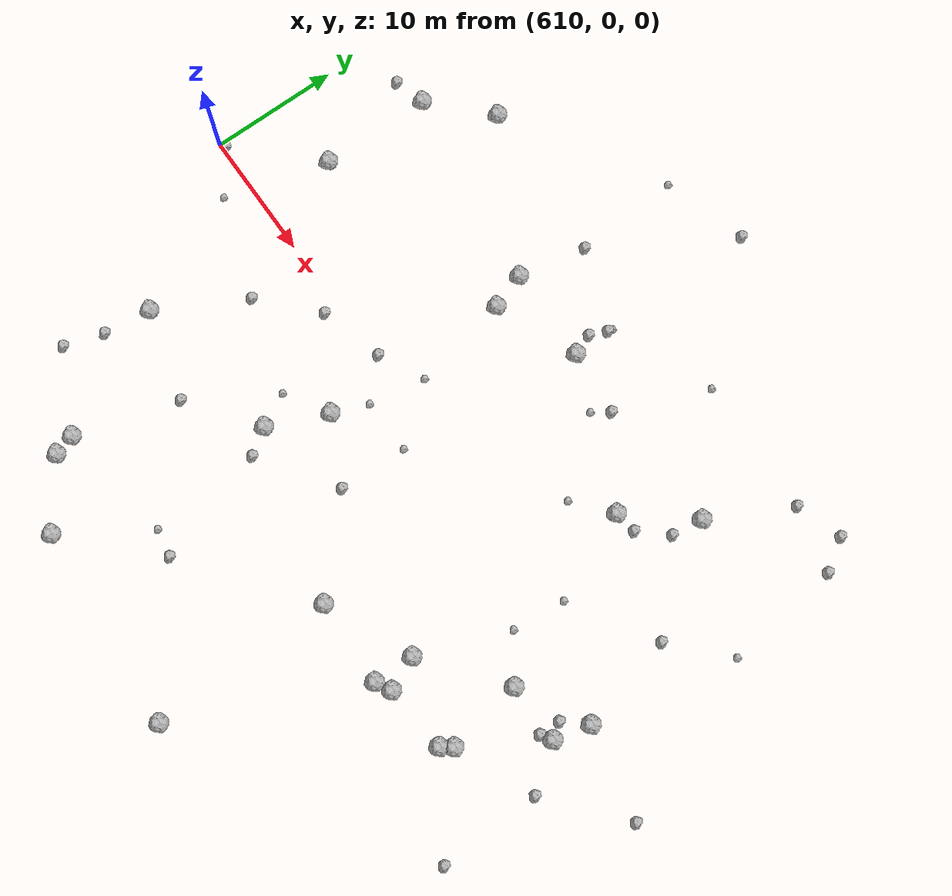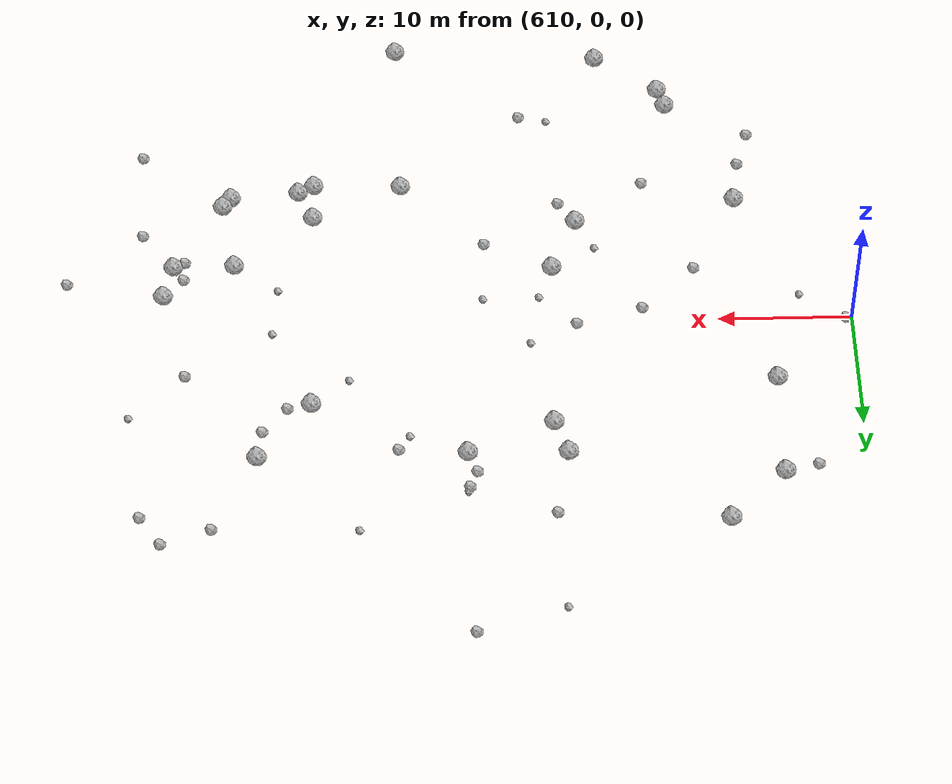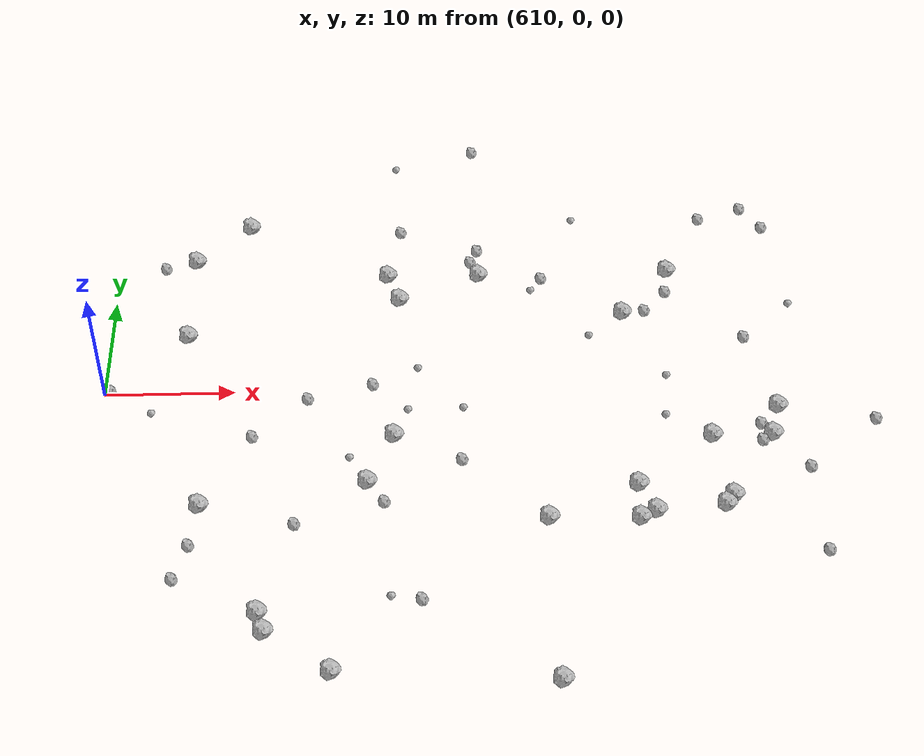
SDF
<sdf version="1.6">
 <world name="default">
  <include><uri>model://sun</uri></include>
  <model name="rock1_16_3">
   <include><uri>model://rock1</uri><pose>628.0999870653737 -26.594903957009826 0.5 0 0 0</pose></include>
  </model>
  <model name="rock1_16_4">
   <include><uri>model://rock1</uri><pose>643.6296723429122 -13.356023768359496 0.5 0 0 0</pose></include>
  </model>
  <model name="rock1_16_5">
   <include><uri>model://rock1</uri><pose>632.296463148685 -5.021206936099322 0.5 0 0 0</pose></include>
  </model>
  <model name="rock1_16_6">
   <include><uri>model://rock1</uri><pose>661.5597926582753 -2.7467717995760985 0.5 0 0 0</pose></include>
  </model>
  <model name="rock1_16_7">
   <include><uri>model://rock1</uri><pose>656.6459459604359 -12.419491920129076 0.5 0 0 0</pose></include>
  </model>
  <model name="rock1_16_8">
   <include><uri>model://rock1</uri><pose>650.3994685425249 7.700038908310177 0.5 0 0 0</pose></include>
  </model>
  <model name="rock1_16_9">
   <include><uri>model://rock1</uri><pose>631.7123148751973 12.426689339762348 0.5 0 0 0</pose></include>
  </model>
  <model name="rock1_16_10">
   <include><uri>model://rock1</uri><pose>616.136131527957 14.499122683712827 0.5 0 0 0</pose></include>
  </model>
  <model name="rock1_16_11">
   <include><uri>model://rock1</uri><pose>660.8698631715887 -5.577668612102894 0.5 0 0 0</pose></include>
  </model>
  <model name="rock1_16_12">
   <include><uri>model://rock1</uri><pose>650.295752496755 -13.538378293505922 0.5 0 0 0</pose></include>
  </model>
  <model name="rock1_16_13">
   <include><uri>model://rock1</uri><pose>620.3406837825296 18.561644958887747 0.5 0 0 0</pose></include>
  </model>
  <model name="rock1_16_14">
   <include><uri>model://rock1</uri><pose>657.2723066477139 -11.570607512794375 0.5 0 0 0</pose></include>
  </model>
  <model name="rock1_16_15">
   <include><uri>model://rock1</uri><pose>630.344182357987 -9.58639753398554 0.5 0 0 0</pose></include>
  </model>
  <model name="rock1_16_16">
   <include><uri>model://rock1</uri><pose>618.0676485009005 -11.581058202833624 0.5 0 0 0</pose></include>
  </model>
  <model name="rock1_16_17">
   <include><uri>model://rock1</uri><pose>654.3185309860316 12.497655345593458 0.5 0 0 0</pose></include>
  </model>
  <model name="rock1_16_18">
   <include><uri>model://rock1</uri><pose>639.030232358341 12.356920357728477 0.5 0 0 0</pose></include>
  </model>
  <model name="rock1_16_19">
   <include><uri>model://rock1</uri><pose>632.6563696834942 9.680770243906323 0.5 0 0 0</pose></include>
  </model>
  <model name="rock1_16_20">
   <include><uri>model://rock1</uri><pose>623.3296588546035 -23.105849367278005 0.5 0 0 0</pose></include>
  </model>
  <model name="rock1_16_21">
   <include><uri>model://rock1</uri><pose>643.8977706837026 -27.62805999144184 0.5 0 0 0</pose></include>
  </model>
  <model name="rock1_16_22">
   <include><uri>model://rock1</uri><pose>650.3585549046678 -10.330047473872288 0.5 0 0 0</pose></include>
  </model>
  <model name="rock1_16_23">
   <include><uri>model://rock1</uri><pose>616.0376474242688 5.909783173496784 0.5 0 0 0</pose></include>
  </model>
  <model name="rock1_16_24">
   <include><uri>model://rock1</uri><pose>651.4892598467325 -12.887195490027452 0.5 0 0 0</pose></include>
  </model>
  <model name="rock1_16_25">
   <include><uri>model://rock1</uri><pose>622.8258143393788 -21.451472487906862 0.5 0 0 0</pose></include>
  </model>
  <model name="rock1_16_26">
   <include><uri>model://rock1</uri><pose>656.2846467326111 -5.637970583626508 0.5 0 0 0</pose></include>
  </model>
  <model name="rock2_16_0">
   <include><uri>model://rock2</uri><pose>668.8336742321499 -4.15395502424532 0.3 0 0 0</pose></include>
  </model>
  <model name="rock2_16_1">
   <include><uri>model://rock2</uri><pose>632.6985369740344 17.776575020878106 0.3 0 0 0</pose></include>
  </model>
  <model name="rock2_16_2">
   <include><uri>model://rock2</uri><pose>610.4521175759272 0.2272048208485984 0.3 0 0 0</pose></include>
  </model>
  <model name="rock2_16_3">
   <include><uri>model://rock2</uri><pose>644.0385594192892 11.941280512982416 0.3 0 0 0</pose></include>
  </model>
  <model name="rock2_16_4">
   <include><uri>model://rock2</uri><pose>662.6327642164179 17.630448720124477 0.3 0 0 0</pose></include>
  </model>
  <model name="rock2_16_5">
   <include><uri>model://rock2</uri><pose>659.7310020543839 4.838799360640415 0.3 0 0 0</pose></include>
  </model>
  <model name="rock2_16_6">
   <include><uri>model://rock2</uri><pose>661.0777996934875 19.988856589621093 0.3 0 0 0</pose></include>
  </model>
  <model name="rock2_16_7">
   <include><uri>model://rock2</uri><pose>663.5150913863858 -16.811911688172614 0.3 0 0 0</pose></include>
  </model>
  <model name="rock2_16_8">
   <include><uri>model://rock2</uri><pose>630.5989458759459 0.38857563022526165 0.3 0 0 0</pose></include>
  </model>
  <model name="rock2_16_9">
   <include><uri>model://rock2</uri><pose>616.6149583484869 -18.307226136521464 0.3 0 0 0</pose></include>
  </model>
  <model name="rock2_16_10">
   <include><uri>model://rock2</uri><pose>660.0111278288595 -6.101454113921221 0.3 0 0 0</pose></include>
  </model>
  <model name="rock2_16_11">
   <include><uri>model://rock2</uri><pose>638.3604474397379 14.012472931083046 0.3 0 0 0</pose></include>
  </model>
  <model name="rock2_16_12">
   <include><uri>model://rock2</uri><pose>621.5741807653781 -4.8251115449050275 0.3 0 0 0</pose></include>
  </model>
  <model name="rock2_16_13">
   <include><uri>model://rock2</uri><pose>631.5852225127684 -11.48517453532332 0.3 0 0 0</pose></include>
  </model>
  <model name="rock2_16_14">
   <include><uri>model://rock2</uri><pose>663.2712787156529 -8.851520565407437 0.3 0 0 0</pose></include>
  </model>
  <model name="rock2_16_15">
   <include><uri>model://rock2</uri><pose>657.4690066391184 18.78322262293102 0.3 0 0 0</pose></include>
  </model>
  <model name="rock2_16_16">
   <include><uri>model://rock2</uri><pose>638.9175281113379 15.364612769695377 0.3 0 0 0</pose></include>
  </model>
  <model name="rock2_16_17">
   <include><uri>model://rock2</uri><pose>613.6553811089101 13.843950578622888 0.3 0 0 0</pose></include>
  </model>
  <model name="rock2_16_18">
   <include><uri>model://rock2</uri><pose>652.1330123085219 8.012310728723925 0.3 0 0 0</pose></include>
  </model>
  <model name="rock2_16_19">
   <include><uri>model://rock2</uri><pose>637.351629917706 -7.4941990573857495 0.3 0 0 0</pose></include>
  </model>
  <model name="rock2_16_20">
   <include><uri>model://rock2</uri><pose>638.7553941294069 27.9317872212209 0.3 0 0 0</pose></include>
  </model>
  <model name="rock2_16_21">
   <include><uri>model://rock2</uri><pose>653.9559796234184 10.116934770237066 0.3 0 0 0</pose></include>
  </model>
  <model name="rock2_16_22">
   <include><uri>model://rock2</uri><pose>617.5420479147717 -15.251106035900472 0.3 0 0 0</pose></include>
  </model>
  <model name="rock2_16_23">
   <include><uri>model://rock2</uri><pose>625.6471069515078 -1.0219057310631108 0.3 0 0 0</pose></include>
  </model>
  <model name="rock2_16_24">
   <include><uri>model://rock2</uri><pose>634.3245880072782 -20.500904784919587 0.3 0 0 0</pose></include>
  </model>
  <model name="rock2_16_25">
   <include><uri>model://rock2</uri><pose>625.0622885312097 -13.443120081577252 0.3 0 0 0</pose></include>
  </model>
  <model name="rock2_16_26">
   <include><uri>model://rock2</uri><pose>660.0663008981965 -4.432063253433821 0.3 0 0 0</pose></include>
  </model>
  <model name="rock3_16_0">
   <include><uri>model://rock3</uri><pose>653.3064704273611 0.8586659805415664 0.2 0 0 0</pose></include>
  </model>
  <model name="rock3_16_1">
   <include><uri>model://rock3</uri><pose>628.9503776646102 -7.062883963373913 0.2 0 0 0</pose></include>
  </model>
  <model name="rock3_16_2">
   <include><uri>model://rock3</uri><pose>647.5734686829884 5.3855461671389975 0.2 0 0 0</pose></include>
  </model>
  <model name="rock3_16_3">
   <include><uri>model://rock3</uri><pose>652.9256752128268 -3.3140183583657503 0.2 0 0 0</pose></include>
  </model>
  <model name="rock3_16_4">
   <include><uri>model://rock3</uri><pose>632.2588213585469 25.88688695294345 0.2 0 0 0</pose></include>
  </model>
  <model name="rock3_16_5">
   <include><uri>model://rock3</uri><pose>613.7539245547789 -2.1690868896375335 0.2 0 0 0</pose></include>
  </model>
  <model name="rock3_16_6">
   <include><uri>model://rock3</uri><pose>637.5340600304946 -2.164814215161261 0.2 0 0 0</pose></include>
  </model>
  <model name="rock3_16_7">
   <include><uri>model://rock3</uri><pose>632.1437292998972 -20.143295577705423 0.2 0 0 0</pose></include>
  </model>
  <model name="rock3_16_8">
   <include><uri>model://rock3</uri><pose>646.8641364495513 18.987607577179368 0.2 0 0 0</pose></include>
  </model>
  <model name="rock3_16_9">
   <include><uri>model://rock3</uri><pose>634.071347642525 2.1268523736097364 0.2 0 0 0</pose></include>
  </model>
  <model name="rock3_16_10">
   <include><uri>model://rock3</uri><pose>638.9950709161144 15.70540202069089 0.2 0 0 0</pose></include>
  </model>
  <model name="rock3_16_11">
   <include><uri>model://rock3</uri><pose>633.3117379994012 -2.275543443929159 0.2 0 0 0</pose></include>
  </model>
  <model name="rock3_16_12">
   <include><uri>model://rock3</uri><pose>663.7308888165983 8.57208844739737 0.2 0 0 0</pose></include>
  </model>
  <model name="rock3_16_13">
   <include><uri>model://rock3</uri><pose>643.1652401650565 10.636068343070065 0.2 0 0 0</pose></include>
  </model>
 </world>
</sdf>
